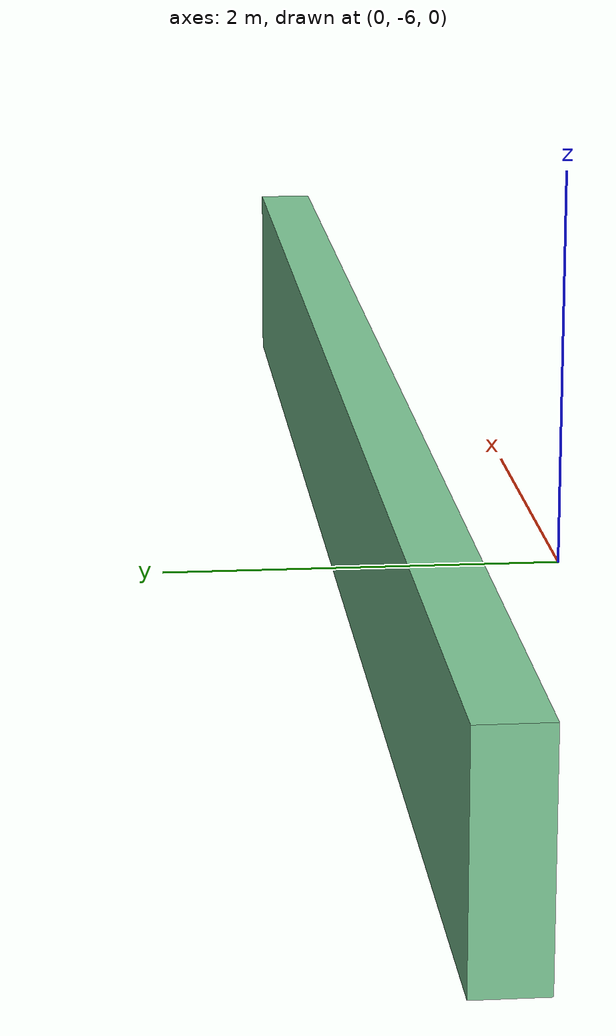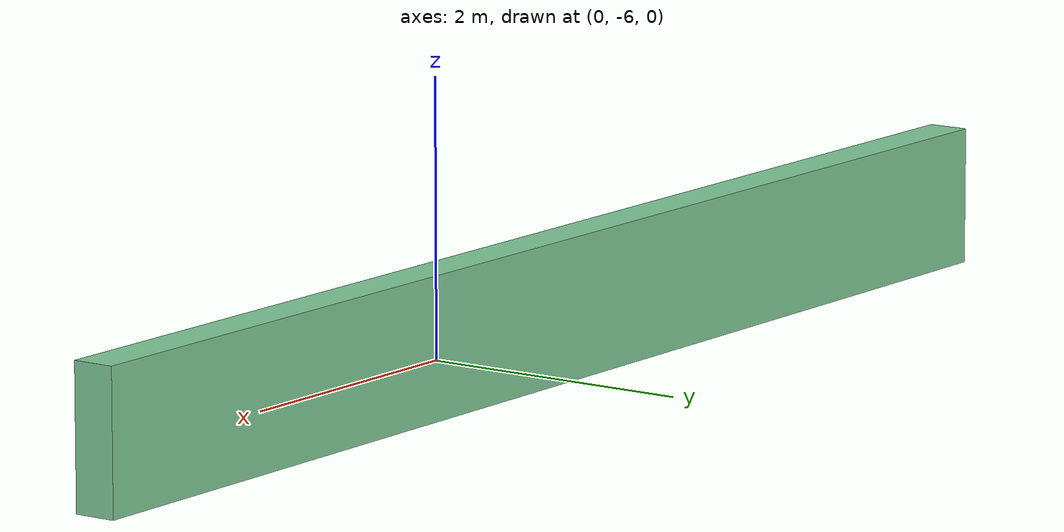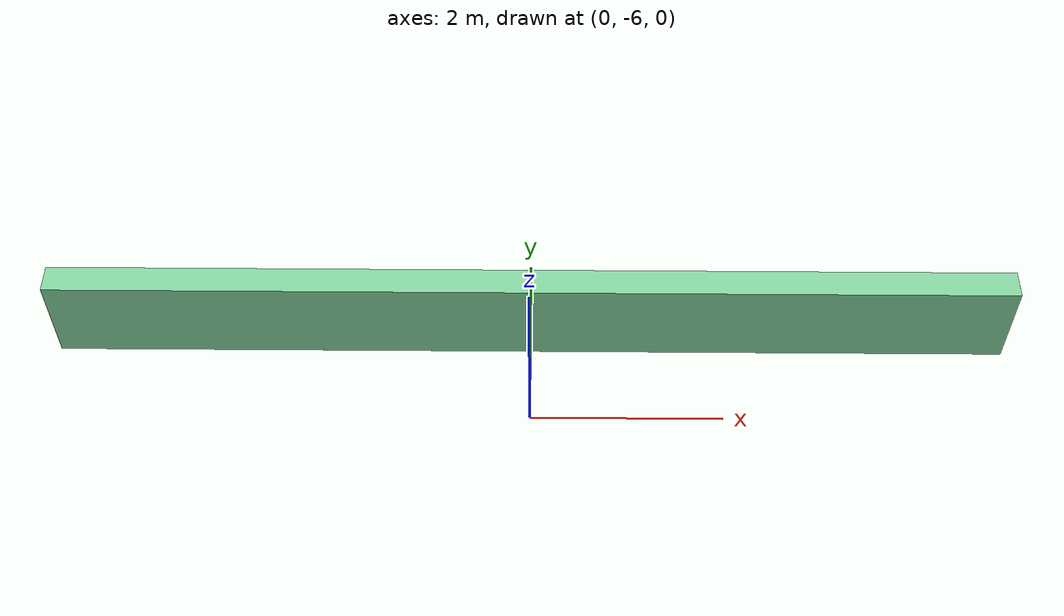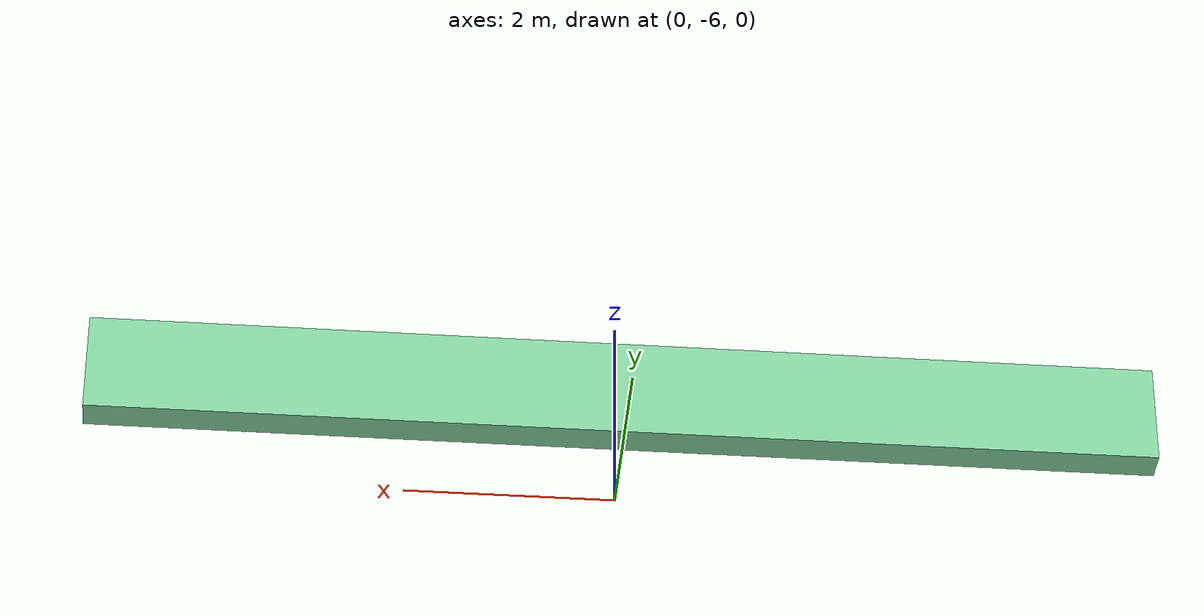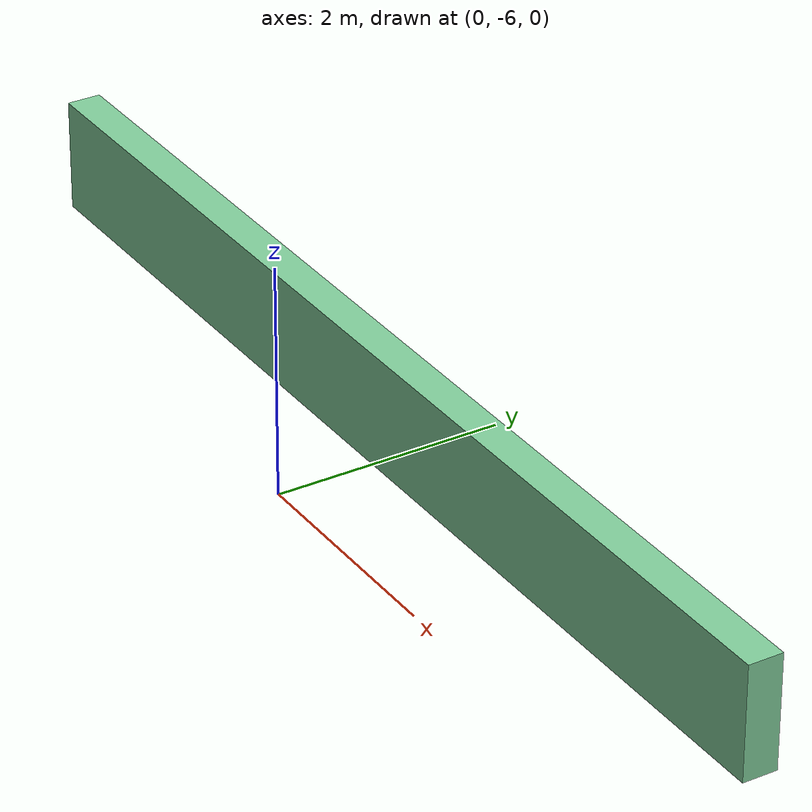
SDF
<sdf version="1.6">
    <model name='wall4'>
        <static>true</static>
        <pose>0 -5 0.5 0 0 0</pose><!--pose relative to the world-->
        <link name='box'>
            <visual name='visual'>
                <geometry>
                    <box>
                        <size>10.0 0.3 1.0</size>
                    </box>
                </geometry>
                <!--let's add color to our link-->
                <material>
                    <ambient>0.5 0.8 0.6 1</ambient>
                    <diffuse>0.5 0.8 0.6 1</diffuse>
                    <specular>0.5 0.8 0.6 1</specular>
                </material>
            </visual>
            <collision name='collision'>
                <geometry>
                    <box>
                        <size>10.0 0.3 1.0</size>
                    </box>
                </geometry>
            </collision>
        </link>
    </model>
</sdf>
